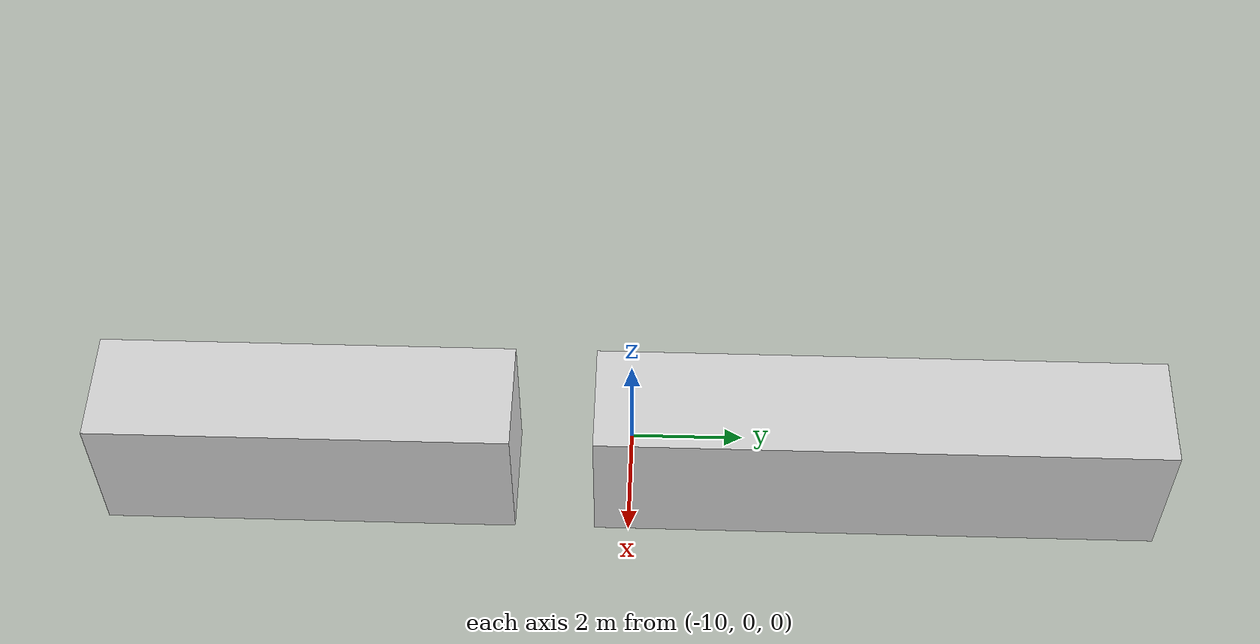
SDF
<?xml version="1.0" ?>
<sdf version="1.6">
  <model name="study_track_gate_r">
    <static>true</static>

    <link name='wall_l'>
      <pose>-9 4.3 1.25 0 0 0</pose>
      <collision name='collision'>
        <geometry>
          <box>
            <size>2 9.8 2.5</size>
          </box>
        </geometry>
      </collision>
      <visual name='box_visual'>
        <geometry>
          <box>
            <size>2 9.8 2.5</size>
          </box>
        </geometry>
        <material>
          <ambient>0.85 0.85 0.85 1</ambient>
          <diffuse>0.85 0.85 0.85 1</diffuse>
          <specular>0.15 0.15 0.15 1</specular>
          <emissive>0 0 0 0</emissive>
        </material>
      </visual>
    </link>

    <link name='wall_r'>
      <pose>-9 -5.6 1.25 0 0 0</pose>
      <collision name='collision'>
        <geometry>
          <box>
            <size>2 7.2 2.5</size>
          </box>
        </geometry>
      </collision>
      <visual name='box_visual'>
        <geometry>
          <box>
            <size>2 7.2 2.5</size>
          </box>
        </geometry>
        <material>
          <ambient>0.85 0.85 0.85 1</ambient>
          <diffuse>0.85 0.85 0.85 1</diffuse>
          <specular>0.15 0.15 0.15 1</specular>
          <emissive>0 0 0 0</emissive>
        </material>
      </visual>
    </link>

  </model>
</sdf>
